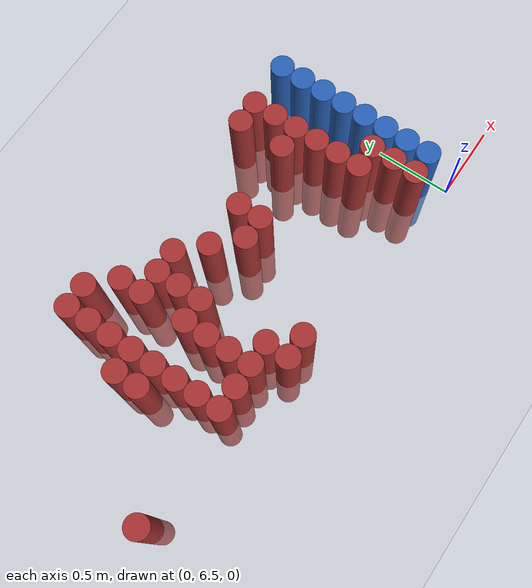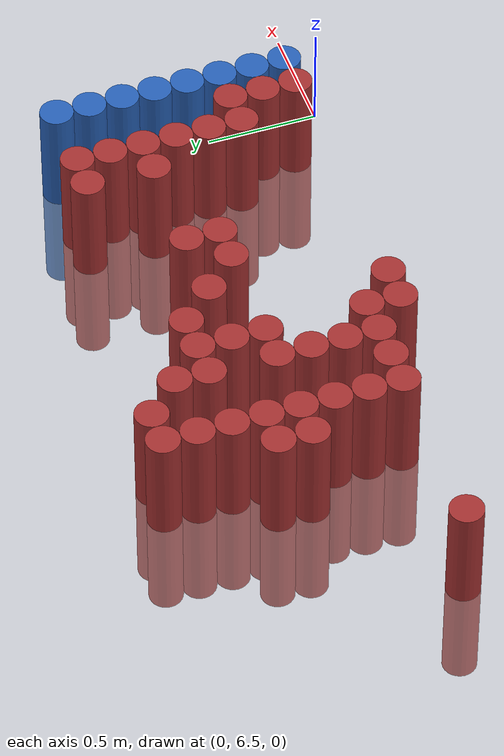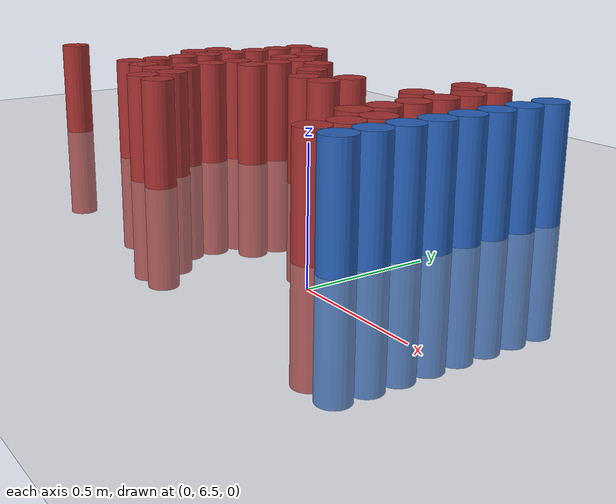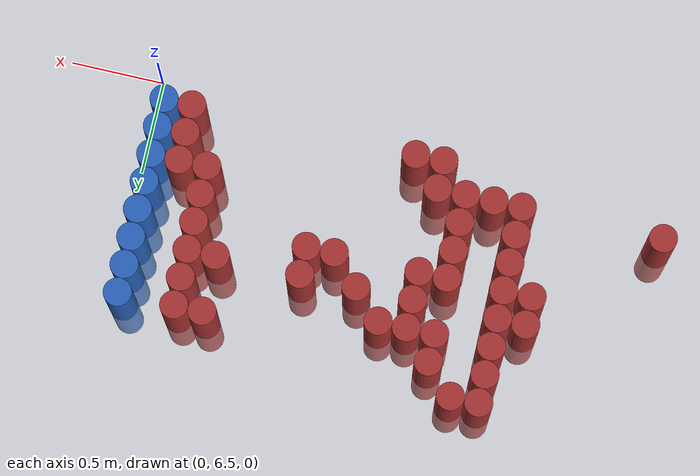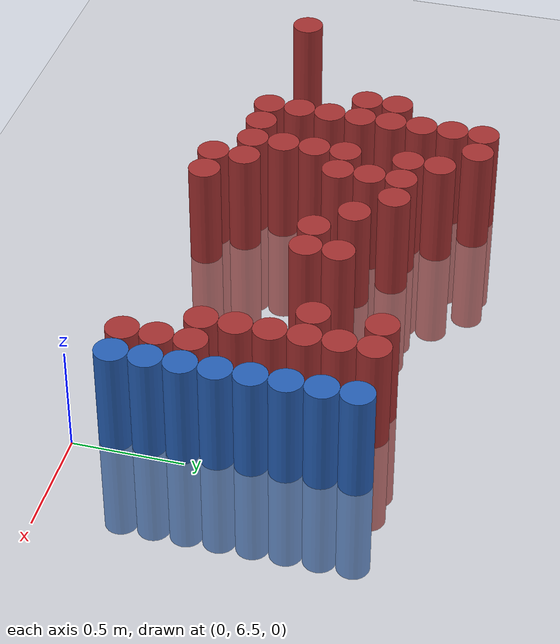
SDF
<sdf version="1.6">
 <world name="default">
  <model name="ground_plane">
   <static>1</static>
   <link name="link">
    <collision name="collision">
     <geometry><plane><normal>0 0 1</normal><size>100 100</size></plane></geometry>
     <surface><friction><ode><mu>100</mu><mu2>50</mu2></ode></friction></surface>
    </collision>
    <visual name="visual">
     <cast_shadows>0</cast_shadows>
     <geometry><plane><normal>0 0 1</normal><size>100 100</size></plane></geometry>
     <material>
      <script><uri>file://media/materials/scripts/gazebo.material</uri><name>Gazebo/Grey</name></script>
     </material>
    </visual>
   </link>
  </model>
  <model name="unit_cylinder_164">
   <static>1</static>
   <pose>-2.775000 6.825000 0.000000 0.000000 0.000000 0.000000</pose>
   <link name="link">
    <inertial>
     <mass>1</mass>
     <inertia><ixx>0.145833</ixx><ixy>0</ixy><ixz>0</ixz><iyy>0.145833</iyy><iyz>0</iyz><izz>0.125</izz></inertia>
    </inertial>
    <collision name="collision">
     <geometry><cylinder><radius>0.075000</radius><length>1</length></cylinder></geometry>
    </collision>
    <visual name="visual">
     <geometry><cylinder><radius>0.075000</radius><length>1</length></cylinder></geometry>
     <material>
      <ambient>0.648000 0.192000 0.192000 1</ambient>
      <diffuse>0.648000 0.192000 0.192000 1</diffuse>
     </material>
     <material>
      <script><name>Gazebo/Grey</name><uri>file://media/materials/scripts/gazebo.material</uri></script>
     </material>
    </visual>
   </link>
  </model>
  <model name="unit_cylinder_169">
   <static>1</static>
   <pose>-2.175000 7.275000 0.000000 0.000000 0.000000 0.000000</pose>
   <link name="link">
    <inertial>
     <mass>1</mass>
     <inertia><ixx>0.145833</ixx><ixy>0</ixy><ixz>0</ixz><iyy>0.145833</iyy><iyz>0</iyz><izz>0.125</izz></inertia>
    </inertial>
    <collision name="collision">
     <geometry><cylinder><radius>0.075000</radius><length>1</length></cylinder></geometry>
    </collision>
    <visual name="visual">
     <geometry><cylinder><radius>0.075000</radius><length>1</length></cylinder></geometry>
     <material>
      <ambient>0.648000 0.192000 0.192000 1</ambient>
      <diffuse>0.648000 0.192000 0.192000 1</diffuse>
     </material>
     <material>
      <script><name>Gazebo/Grey</name><uri>file://media/materials/scripts/gazebo.material</uri></script>
     </material>
    </visual>
   </link>
  </model>
  <model name="unit_cylinder_170">
   <static>1</static>
   <pose>-2.175000 7.425000 0.000000 0.000000 0.000000 0.000000</pose>
   <link name="link">
    <inertial>
     <mass>1</mass>
     <inertia><ixx>0.145833</ixx><ixy>0</ixy><ixz>0</ixz><iyy>0.145833</iyy><iyz>0</iyz><izz>0.125</izz></inertia>
    </inertial>
    <collision name="collision">
     <geometry><cylinder><radius>0.075000</radius><length>1</length></cylinder></geometry>
    </collision>
    <visual name="visual">
     <geometry><cylinder><radius>0.075000</radius><length>1</length></cylinder></geometry>
     <material>
      <ambient>0.648000 0.192000 0.192000 1</ambient>
      <diffuse>0.648000 0.192000 0.192000 1</diffuse>
     </material>
     <material>
      <script><name>Gazebo/Grey</name><uri>file://media/materials/scripts/gazebo.material</uri></script>
     </material>
    </visual>
   </link>
  </model>
  <model name="unit_cylinder_171">
   <static>1</static>
   <pose>-2.025000 6.825000 0.000000 0.000000 0.000000 0.000000</pose>
   <link name="link">
    <inertial>
     <mass>1</mass>
     <inertia><ixx>0.145833</ixx><ixy>0</ixy><ixz>0</ixz><iyy>0.145833</iyy><iyz>0</iyz><izz>0.125</izz></inertia>
    </inertial>
    <collision name="collision">
     <geometry><cylinder><radius>0.075000</radius><length>1</length></cylinder></geometry>
    </collision>
    <visual name="visual">
     <geometry><cylinder><radius>0.075000</radius><length>1</length></cylinder></geometry>
     <material>
      <ambient>0.648000 0.192000 0.192000 1</ambient>
      <diffuse>0.648000 0.192000 0.192000 1</diffuse>
     </material>
     <material>
      <script><name>Gazebo/Grey</name><uri>file://media/materials/scripts/gazebo.material</uri></script>
     </material>
    </visual>
   </link>
  </model>
  <model name="unit_cylinder_172">
   <static>1</static>
   <pose>-2.025000 6.975000 0.000000 0.000000 0.000000 0.000000</pose>
   <link name="link">
    <inertial>
     <mass>1</mass>
     <inertia><ixx>0.145833</ixx><ixy>0</ixy><ixz>0</ixz><iyy>0.145833</iyy><iyz>0</iyz><izz>0.125</izz></inertia>
    </inertial>
    <collision name="collision">
     <geometry><cylinder><radius>0.075000</radius><length>1</length></cylinder></geometry>
    </collision>
    <visual name="visual">
     <geometry><cylinder><radius>0.075000</radius><length>1</length></cylinder></geometry>
     <material>
      <ambient>0.648000 0.192000 0.192000 1</ambient>
      <diffuse>0.648000 0.192000 0.192000 1</diffuse>
     </material>
     <material>
      <script><name>Gazebo/Grey</name><uri>file://media/materials/scripts/gazebo.material</uri></script>
     </material>
    </visual>
   </link>
  </model>
  <model name="unit_cylinder_173">
   <static>1</static>
   <pose>-2.025000 7.125000 0.000000 0.000000 0.000000 0.000000</pose>
   <link name="link">
    <inertial>
     <mass>1</mass>
     <inertia><ixx>0.145833</ixx><ixy>0</ixy><ixz>0</ixz><iyy>0.145833</iyy><iyz>0</iyz><izz>0.125</izz></inertia>
    </inertial>
    <collision name="collision">
     <geometry><cylinder><radius>0.075000</radius><length>1</length></cylinder></geometry>
    </collision>
    <visual name="visual">
     <geometry><cylinder><radius>0.075000</radius><length>1</length></cylinder></geometry>
     <material>
      <ambient>0.648000 0.192000 0.192000 1</ambient>
      <diffuse>0.648000 0.192000 0.192000 1</diffuse>
     </material>
     <material>
      <script><name>Gazebo/Grey</name><uri>file://media/materials/scripts/gazebo.material</uri></script>
     </material>
    </visual>
   </link>
  </model>
  <model name="unit_cylinder_174">
   <static>1</static>
   <pose>-2.025000 7.275000 0.000000 0.000000 0.000000 0.000000</pose>
   <link name="link">
    <inertial>
     <mass>1</mass>
     <inertia><ixx>0.145833</ixx><ixy>0</ixy><ixz>0</ixz><iyy>0.145833</iyy><iyz>0</iyz><izz>0.125</izz></inertia>
    </inertial>
    <collision name="collision">
     <geometry><cylinder><radius>0.075000</radius><length>1</length></cylinder></geometry>
    </collision>
    <visual name="visual">
     <geometry><cylinder><radius>0.075000</radius><length>1</length></cylinder></geometry>
     <material>
      <ambient>0.648000 0.192000 0.192000 1</ambient>
      <diffuse>0.648000 0.192000 0.192000 1</diffuse>
     </material>
     <material>
      <script><name>Gazebo/Grey</name><uri>file://media/materials/scripts/gazebo.material</uri></script>
     </material>
    </visual>
   </link>
  </model>
  <model name="unit_cylinder_175">
   <static>1</static>
   <pose>-2.025000 7.425000 0.000000 0.000000 0.000000 0.000000</pose>
   <link name="link">
    <inertial>
     <mass>1</mass>
     <inertia><ixx>0.145833</ixx><ixy>0</ixy><ixz>0</ixz><iyy>0.145833</iyy><iyz>0</iyz><izz>0.125</izz></inertia>
    </inertial>
    <collision name="collision">
     <geometry><cylinder><radius>0.075000</radius><length>1</length></cylinder></geometry>
    </collision>
    <visual name="visual">
     <geometry><cylinder><radius>0.075000</radius><length>1</length></cylinder></geometry>
     <material>
      <ambient>0.648000 0.192000 0.192000 1</ambient>
      <diffuse>0.648000 0.192000 0.192000 1</diffuse>
     </material>
     <material>
      <script><name>Gazebo/Grey</name><uri>file://media/materials/scripts/gazebo.material</uri></script>
     </material>
    </visual>
   </link>
  </model>
  <model name="unit_cylinder_176">
   <static>1</static>
   <pose>-2.025000 7.575000 0.000000 0.000000 0.000000 0.000000</pose>
   <link name="link">
    <inertial>
     <mass>1</mass>
     <inertia><ixx>0.145833</ixx><ixy>0</ixy><ixz>0</ixz><iyy>0.145833</iyy><iyz>0</iyz><izz>0.125</izz></inertia>
    </inertial>
    <collision name="collision">
     <geometry><cylinder><radius>0.075000</radius><length>1</length></cylinder></geometry>
    </collision>
    <visual name="visual">
     <geometry><cylinder><radius>0.075000</radius><length>1</length></cylinder></geometry>
     <material>
      <ambient>0.648000 0.192000 0.192000 1</ambient>
      <diffuse>0.648000 0.192000 0.192000 1</diffuse>
     </material>
     <material>
      <script><name>Gazebo/Grey</name><uri>file://media/materials/scripts/gazebo.material</uri></script>
     </material>
    </visual>
   </link>
  </model>
  <model name="unit_cylinder_177">
   <static>1</static>
   <pose>-2.025000 7.725000 0.000000 0.000000 0.000000 0.000000</pose>
   <link name="link">
    <inertial>
     <mass>1</mass>
     <inertia><ixx>0.145833</ixx><ixy>0</ixy><ixz>0</ixz><iyy>0.145833</iyy><iyz>0</iyz><izz>0.125</izz></inertia>
    </inertial>
    <collision name="collision">
     <geometry><cylinder><radius>0.075000</radius><length>1</length></cylinder></geometry>
    </collision>
    <visual name="visual">
     <geometry><cylinder><radius>0.075000</radius><length>1</length></cylinder></geometry>
     <material>
      <ambient>0.648000 0.192000 0.192000 1</ambient>
      <diffuse>0.648000 0.192000 0.192000 1</diffuse>
     </material>
     <material>
      <script><name>Gazebo/Grey</name><uri>file://media/materials/scripts/gazebo.material</uri></script>
     </material>
    </visual>
   </link>
  </model>
  <model name="unit_cylinder_178">
   <static>1</static>
   <pose>-2.025000 7.875000 0.000000 0.000000 0.000000 0.000000</pose>
   <link name="link">
    <inertial>
     <mass>1</mass>
     <inertia><ixx>0.145833</ixx><ixy>0</ixy><ixz>0</ixz><iyy>0.145833</iyy><iyz>0</iyz><izz>0.125</izz></inertia>
    </inertial>
    <collision name="collision">
     <geometry><cylinder><radius>0.075000</radius><length>1</length></cylinder></geometry>
    </collision>
    <visual name="visual">
     <geometry><cylinder><radius>0.075000</radius><length>1</length></cylinder></geometry>
     <material>
      <ambient>0.648000 0.192000 0.192000 1</ambient>
      <diffuse>0.648000 0.192000 0.192000 1</diffuse>
     </material>
     <material>
      <script><name>Gazebo/Grey</name><uri>file://media/materials/scripts/gazebo.material</uri></script>
     </material>
    </visual>
   </link>
  </model>
  <model name="unit_cylinder_182">
   <static>1</static>
   <pose>-1.875000 6.825000 0.000000 0.000000 0.000000 0.000000</pose>
   <link name="link">
    <inertial>
     <mass>1</mass>
     <inertia><ixx>0.145833</ixx><ixy>0</ixy><ixz>0</ixz><iyy>0.145833</iyy><iyz>0</iyz><izz>0.125</izz></inertia>
    </inertial>
    <collision name="collision">
     <geometry><cylinder><radius>0.075000</radius><length>1</length></cylinder></geometry>
    </collision>
    <visual name="visual">
     <geometry><cylinder><radius>0.075000</radius><length>1</length></cylinder></geometry>
     <material>
      <ambient>0.648000 0.192000 0.192000 1</ambient>
      <diffuse>0.648000 0.192000 0.192000 1</diffuse>
     </material>
     <material>
      <script><name>Gazebo/Grey</name><uri>file://media/materials/scripts/gazebo.material</uri></script>
     </material>
    </visual>
   </link>
  </model>
  <model name="unit_cylinder_183">
   <static>1</static>
   <pose>-1.875000 7.875000 0.000000 0.000000 0.000000 0.000000</pose>
   <link name="link">
    <inertial>
     <mass>1</mass>
     <inertia><ixx>0.145833</ixx><ixy>0</ixy><ixz>0</ixz><iyy>0.145833</iyy><iyz>0</iyz><izz>0.125</izz></inertia>
    </inertial>
    <collision name="collision">
     <geometry><cylinder><radius>0.075000</radius><length>1</length></cylinder></geometry>
    </collision>
    <visual name="visual">
     <geometry><cylinder><radius>0.075000</radius><length>1</length></cylinder></geometry>
     <material>
      <ambient>0.648000 0.192000 0.192000 1</ambient>
      <diffuse>0.648000 0.192000 0.192000 1</diffuse>
     </material>
     <material>
      <script><name>Gazebo/Grey</name><uri>file://media/materials/scripts/gazebo.material</uri></script>
     </material>
    </visual>
   </link>
  </model>
  <model name="unit_cylinder_190">
   <static>1</static>
   <pose>-1.725000 6.825000 0.000000 0.000000 0.000000 0.000000</pose>
   <link name="link">
    <inertial>
     <mass>1</mass>
     <inertia><ixx>0.145833</ixx><ixy>0</ixy><ixz>0</ixz><iyy>0.145833</iyy><iyz>0</iyz><izz>0.125</izz></inertia>
    </inertial>
    <collision name="collision">
     <geometry><cylinder><radius>0.075000</radius><length>1</length></cylinder></geometry>
    </collision>
    <visual name="visual">
     <geometry><cylinder><radius>0.075000</radius><length>1</length></cylinder></geometry>
     <material>
      <ambient>0.648000 0.192000 0.192000 1</ambient>
      <diffuse>0.648000 0.192000 0.192000 1</diffuse>
     </material>
     <material>
      <script><name>Gazebo/Grey</name><uri>file://media/materials/scripts/gazebo.material</uri></script>
     </material>
    </visual>
   </link>
  </model>
  <model name="unit_cylinder_191">
   <static>1</static>
   <pose>-1.725000 6.975000 0.000000 0.000000 0.000000 0.000000</pose>
   <link name="link">
    <inertial>
     <mass>1</mass>
     <inertia><ixx>0.145833</ixx><ixy>0</ixy><ixz>0</ixz><iyy>0.145833</iyy><iyz>0</iyz><izz>0.125</izz></inertia>
    </inertial>
    <collision name="collision">
     <geometry><cylinder><radius>0.075000</radius><length>1</length></cylinder></geometry>
    </collision>
    <visual name="visual">
     <geometry><cylinder><radius>0.075000</radius><length>1</length></cylinder></geometry>
     <material>
      <ambient>0.648000 0.192000 0.192000 1</ambient>
      <diffuse>0.648000 0.192000 0.192000 1</diffuse>
     </material>
     <material>
      <script><name>Gazebo/Grey</name><uri>file://media/materials/scripts/gazebo.material</uri></script>
     </material>
    </visual>
   </link>
  </model>
  <model name="unit_cylinder_192">
   <static>1</static>
   <pose>-1.725000 7.125000 0.000000 0.000000 0.000000 0.000000</pose>
   <link name="link">
    <inertial>
     <mass>1</mass>
     <inertia><ixx>0.145833</ixx><ixy>0</ixy><ixz>0</ixz><iyy>0.145833</iyy><iyz>0</iyz><izz>0.125</izz></inertia>
    </inertial>
    <collision name="collision">
     <geometry><cylinder><radius>0.075000</radius><length>1</length></cylinder></geometry>
    </collision>
    <visual name="visual">
     <geometry><cylinder><radius>0.075000</radius><length>1</length></cylinder></geometry>
     <material>
      <ambient>0.648000 0.192000 0.192000 1</ambient>
      <diffuse>0.648000 0.192000 0.192000 1</diffuse>
     </material>
     <material>
      <script><name>Gazebo/Grey</name><uri>file://media/materials/scripts/gazebo.material</uri></script>
     </material>
    </visual>
   </link>
  </model>
  <model name="unit_cylinder_193">
   <static>1</static>
   <pose>-1.725000 7.275000 0.000000 0.000000 0.000000 0.000000</pose>
   <link name="link">
    <inertial>
     <mass>1</mass>
     <inertia><ixx>0.145833</ixx><ixy>0</ixy><ixz>0</ixz><iyy>0.145833</iyy><iyz>0</iyz><izz>0.125</izz></inertia>
    </inertial>
    <collision name="collision">
     <geometry><cylinder><radius>0.075000</radius><length>1</length></cylinder></geometry>
    </collision>
    <visual name="visual">
     <geometry><cylinder><radius>0.075000</radius><length>1</length></cylinder></geometry>
     <material>
      <ambient>0.648000 0.192000 0.192000 1</ambient>
      <diffuse>0.648000 0.192000 0.192000 1</diffuse>
     </material>
     <material>
      <script><name>Gazebo/Grey</name><uri>file://media/materials/scripts/gazebo.material</uri></script>
     </material>
    </visual>
   </link>
  </model>
  <model name="unit_cylinder_194">
   <static>1</static>
   <pose>-1.725000 7.575000 0.000000 0.000000 0.000000 0.000000</pose>
   <link name="link">
    <inertial>
     <mass>1</mass>
     <inertia><ixx>0.145833</ixx><ixy>0</ixy><ixz>0</ixz><iyy>0.145833</iyy><iyz>0</iyz><izz>0.125</izz></inertia>
    </inertial>
    <collision name="collision">
     <geometry><cylinder><radius>0.075000</radius><length>1</length></cylinder></geometry>
    </collision>
    <visual name="visual">
     <geometry><cylinder><radius>0.075000</radius><length>1</length></cylinder></geometry>
     <material>
      <ambient>0.648000 0.192000 0.192000 1</ambient>
      <diffuse>0.648000 0.192000 0.192000 1</diffuse>
     </material>
     <material>
      <script><name>Gazebo/Grey</name><uri>file://media/materials/scripts/gazebo.material</uri></script>
     </material>
    </visual>
   </link>
  </model>
  <model name="unit_cylinder_195">
   <static>1</static>
   <pose>-1.725000 7.725000 0.000000 0.000000 0.000000 0.000000</pose>
   <link name="link">
    <inertial>
     <mass>1</mass>
     <inertia><ixx>0.145833</ixx><ixy>0</ixy><ixz>0</ixz><iyy>0.145833</iyy><iyz>0</iyz><izz>0.125</izz></inertia>
    </inertial>
    <collision name="collision">
     <geometry><cylinder><radius>0.075000</radius><length>1</length></cylinder></geometry>
    </collision>
    <visual name="visual">
     <geometry><cylinder><radius>0.075000</radius><length>1</length></cylinder></geometry>
     <material>
      <ambient>0.648000 0.192000 0.192000 1</ambient>
      <diffuse>0.648000 0.192000 0.192000 1</diffuse>
     </material>
     <material>
      <script><name>Gazebo/Grey</name><uri>file://media/materials/scripts/gazebo.material</uri></script>
     </material>
    </visual>
   </link>
  </model>
  <model name="unit_cylinder_199">
   <static>1</static>
   <pose>-1.575000 6.675000 0.000000 0.000000 0.000000 0.000000</pose>
   <link name="link">
    <inertial>
     <mass>1</mass>
     <inertia><ixx>0.145833</ixx><ixy>0</ixy><ixz>0</ixz><iyy>0.145833</iyy><iyz>0</iyz><izz>0.125</izz></inertia>
    </inertial>
    <collision name="collision">
     <geometry><cylinder><radius>0.075000</radius><length>1</length></cylinder></geometry>
    </collision>
    <visual name="visual">
     <geometry><cylinder><radius>0.075000</radius><length>1</length></cylinder></geometry>
     <material>
      <ambient>0.648000 0.192000 0.192000 1</ambient>
      <diffuse>0.648000 0.192000 0.192000 1</diffuse>
     </material>
     <material>
      <script><name>Gazebo/Grey</name><uri>file://media/materials/scripts/gazebo.material</uri></script>
     </material>
    </visual>
   </link>
  </model>
  <model name="unit_cylinder_200">
   <static>1</static>
   <pose>-1.575000 6.825000 0.000000 0.000000 0.000000 0.000000</pose>
   <link name="link">
    <inertial>
     <mass>1</mass>
     <inertia><ixx>0.145833</ixx><ixy>0</ixy><ixz>0</ixz><iyy>0.145833</iyy><iyz>0</iyz><izz>0.125</izz></inertia>
    </inertial>
    <collision name="collision">
     <geometry><cylinder><radius>0.075000</radius><length>1</length></cylinder></geometry>
    </collision>
    <visual name="visual">
     <geometry><cylinder><radius>0.075000</radius><length>1</length></cylinder></geometry>
     <material>
      <ambient>0.648000 0.192000 0.192000 1</ambient>
      <diffuse>0.648000 0.192000 0.192000 1</diffuse>
     </material>
     <material>
      <script><name>Gazebo/Grey</name><uri>file://media/materials/scripts/gazebo.material</uri></script>
     </material>
    </visual>
   </link>
  </model>
  <model name="unit_cylinder_201">
   <static>1</static>
   <pose>-1.575000 7.275000 0.000000 0.000000 0.000000 0.000000</pose>
   <link name="link">
    <inertial>
     <mass>1</mass>
     <inertia><ixx>0.145833</ixx><ixy>0</ixy><ixz>0</ixz><iyy>0.145833</iyy><iyz>0</iyz><izz>0.125</izz></inertia>
    </inertial>
    <collision name="collision">
     <geometry><cylinder><radius>0.075000</radius><length>1</length></cylinder></geometry>
    </collision>
    <visual name="visual">
     <geometry><cylinder><radius>0.075000</radius><length>1</length></cylinder></geometry>
     <material>
      <ambient>0.648000 0.192000 0.192000 1</ambient>
      <diffuse>0.648000 0.192000 0.192000 1</diffuse>
     </material>
     <material>
      <script><name>Gazebo/Grey</name><uri>file://media/materials/scripts/gazebo.material</uri></script>
     </material>
    </visual>
   </link>
  </model>
  <model name="unit_cylinder_202">
   <static>1</static>
   <pose>-1.575000 7.425000 0.000000 0.000000 0.000000 0.000000</pose>
   <link name="link">
    <inertial>
     <mass>1</mass>
     <inertia><ixx>0.145833</ixx><ixy>0</ixy><ixz>0</ixz><iyy>0.145833</iyy><iyz>0</iyz><izz>0.125</izz></inertia>
    </inertial>
    <collision name="collision">
     <geometry><cylinder><radius>0.075000</radius><length>1</length></cylinder></geometry>
    </collision>
    <visual name="visual">
     <geometry><cylinder><radius>0.075000</radius><length>1</length></cylinder></geometry>
     <material>
      <ambient>0.648000 0.192000 0.192000 1</ambient>
      <diffuse>0.648000 0.192000 0.192000 1</diffuse>
     </material>
     <material>
      <script><name>Gazebo/Grey</name><uri>file://media/materials/scripts/gazebo.material</uri></script>
     </material>
    </visual>
   </link>
  </model>
  <model name="unit_cylinder_203">
   <static>1</static>
   <pose>-1.575000 7.575000 0.000000 0.000000 0.000000 0.000000</pose>
   <link name="link">
    <inertial>
     <mass>1</mass>
     <inertia><ixx>0.145833</ixx><ixy>0</ixy><ixz>0</ixz><iyy>0.145833</iyy><iyz>0</iyz><izz>0.125</izz></inertia>
    </inertial>
    <collision name="collision">
     <geometry><cylinder><radius>0.075000</radius><length>1</length></cylinder></geometry>
    </collision>
    <visual name="visual">
     <geometry><cylinder><radius>0.075000</radius><length>1</length></cylinder></geometry>
     <material>
      <ambient>0.648000 0.192000 0.192000 1</ambient>
      <diffuse>0.648000 0.192000 0.192000 1</diffuse>
     </material>
     <material>
      <script><name>Gazebo/Grey</name><uri>file://media/materials/scripts/gazebo.material</uri></script>
     </material>
    </visual>
   </link>
  </model>
  <model name="unit_cylinder_206">
   <static>1</static>
   <pose>-1.425000 6.675000 0.000000 0.000000 0.000000 0.000000</pose>
   <link name="link">
    <inertial>
     <mass>1</mass>
     <inertia><ixx>0.145833</ixx><ixy>0</ixy><ixz>0</ixz><iyy>0.145833</iyy><iyz>0</iyz><izz>0.125</izz></inertia>
    </inertial>
    <collision name="collision">
     <geometry><cylinder><radius>0.075000</radius><length>1</length></cylinder></geometry>
    </collision>
    <visual name="visual">
     <geometry><cylinder><radius>0.075000</radius><length>1</length></cylinder></geometry>
     <material>
      <ambient>0.648000 0.192000 0.192000 1</ambient>
      <diffuse>0.648000 0.192000 0.192000 1</diffuse>
     </material>
     <material>
      <script><name>Gazebo/Grey</name><uri>file://media/materials/scripts/gazebo.material</uri></script>
     </material>
    </visual>
   </link>
  </model>
  <model name="unit_cylinder_207">
   <static>1</static>
   <pose>-1.425000 7.575000 0.000000 0.000000 0.000000 0.000000</pose>
   <link name="link">
    <inertial>
     <mass>1</mass>
     <inertia><ixx>0.145833</ixx><ixy>0</ixy><ixz>0</ixz><iyy>0.145833</iyy><iyz>0</iyz><izz>0.125</izz></inertia>
    </inertial>
    <collision name="collision">
     <geometry><cylinder><radius>0.075000</radius><length>1</length></cylinder></geometry>
    </collision>
    <visual name="visual">
     <geometry><cylinder><radius>0.075000</radius><length>1</length></cylinder></geometry>
     <material>
      <ambient>0.648000 0.192000 0.192000 1</ambient>
      <diffuse>0.648000 0.192000 0.192000 1</diffuse>
     </material>
     <material>
      <script><name>Gazebo/Grey</name><uri>file://media/materials/scripts/gazebo.material</uri></script>
     </material>
    </visual>
   </link>
  </model>
  <model name="unit_cylinder_210">
   <static>1</static>
   <pose>-1.275000 7.425000 0.000000 0.000000 0.000000 0.000000</pose>
   <link name="link">
    <inertial>
     <mass>1</mass>
     <inertia><ixx>0.145833</ixx><ixy>0</ixy><ixz>0</ixz><iyy>0.145833</iyy><iyz>0</iyz><izz>0.125</izz></inertia>
    </inertial>
    <collision name="collision">
     <geometry><cylinder><radius>0.075000</radius><length>1</length></cylinder></geometry>
    </collision>
    <visual name="visual">
     <geometry><cylinder><radius>0.075000</radius><length>1</length></cylinder></geometry>
     <material>
      <ambient>0.648000 0.192000 0.192000 1</ambient>
      <diffuse>0.648000 0.192000 0.192000 1</diffuse>
     </material>
     <material>
      <script><name>Gazebo/Grey</name><uri>file://media/materials/scripts/gazebo.material</uri></script>
     </material>
    </visual>
   </link>
  </model>
  <model name="unit_cylinder_213">
   <static>1</static>
   <pose>-1.125000 7.275000 0.000000 0.000000 0.000000 0.000000</pose>
   <link name="link">
    <inertial>
     <mass>1</mass>
     <inertia><ixx>0.145833</ixx><ixy>0</ixy><ixz>0</ixz><iyy>0.145833</iyy><iyz>0</iyz><izz>0.125</izz></inertia>
    </inertial>
    <collision name="collision">
     <geometry><cylinder><radius>0.075000</radius><length>1</length></cylinder></geometry>
    </collision>
    <visual name="visual">
     <geometry><cylinder><radius>0.075000</radius><length>1</length></cylinder></geometry>
     <material>
      <ambient>0.648000 0.192000 0.192000 1</ambient>
      <diffuse>0.648000 0.192000 0.192000 1</diffuse>
     </material>
     <material>
      <script><name>Gazebo/Grey</name><uri>file://media/materials/scripts/gazebo.material</uri></script>
     </material>
    </visual>
   </link>
  </model>
  <model name="unit_cylinder_215">
   <static>1</static>
   <pose>-0.975000 7.275000 0.000000 0.000000 0.000000 0.000000</pose>
   <link name="link">
    <inertial>
     <mass>1</mass>
     <inertia><ixx>0.145833</ixx><ixy>0</ixy><ixz>0</ixz><iyy>0.145833</iyy><iyz>0</iyz><izz>0.125</izz></inertia>
    </inertial>
    <collision name="collision">
     <geometry><cylinder><radius>0.075000</radius><length>1</length></cylinder></geometry>
    </collision>
    <visual name="visual">
     <geometry><cylinder><radius>0.075000</radius><length>1</length></cylinder></geometry>
     <material>
      <ambient>0.648000 0.192000 0.192000 1</ambient>
      <diffuse>0.648000 0.192000 0.192000 1</diffuse>
     </material>
     <material>
      <script><name>Gazebo/Grey</name><uri>file://media/materials/scripts/gazebo.material</uri></script>
     </material>
    </visual>
   </link>
  </model>
  <model name="unit_cylinder_216">
   <static>1</static>
   <pose>-0.975000 7.425000 0.000000 0.000000 0.000000 0.000000</pose>
   <link name="link">
    <inertial>
     <mass>1</mass>
     <inertia><ixx>0.145833</ixx><ixy>0</ixy><ixz>0</ixz><iyy>0.145833</iyy><iyz>0</iyz><izz>0.125</izz></inertia>
    </inertial>
    <collision name="collision">
     <geometry><cylinder><radius>0.075000</radius><length>1</length></cylinder></geometry>
    </collision>
    <visual name="visual">
     <geometry><cylinder><radius>0.075000</radius><length>1</length></cylinder></geometry>
     <material>
      <ambient>0.648000 0.192000 0.192000 1</ambient>
      <diffuse>0.648000 0.192000 0.192000 1</diffuse>
     </material>
     <material>
      <script><name>Gazebo/Grey</name><uri>file://media/materials/scripts/gazebo.material</uri></script>
     </material>
    </visual>
   </link>
  </model>
  <model name="unit_cylinder_226">
   <static>1</static>
   <pose>-0.525000 7.425000 0.000000 0.000000 0.000000 0.000000</pose>
   <link name="link">
    <inertial>
     <mass>1</mass>
     <inertia><ixx>0.145833</ixx><ixy>0</ixy><ixz>0</ixz><iyy>0.145833</iyy><iyz>0</iyz><izz>0.125</izz></inertia>
    </inertial>
    <collision name="collision">
     <geometry><cylinder><radius>0.075000</radius><length>1</length></cylinder></geometry>
    </collision>
    <visual name="visual">
     <geometry><cylinder><radius>0.075000</radius><length>1</length></cylinder></geometry>
     <material>
      <ambient>0.648000 0.192000 0.192000 1</ambient>
      <diffuse>0.648000 0.192000 0.192000 1</diffuse>
     </material>
     <material>
      <script><name>Gazebo/Grey</name><uri>file://media/materials/scripts/gazebo.material</uri></script>
     </material>
    </visual>
   </link>
  </model>
  <model name="unit_cylinder_227">
   <static>1</static>
   <pose>-0.525000 7.725000 0.000000 0.000000 0.000000 0.000000</pose>
   <link name="link">
    <inertial>
     <mass>1</mass>
     <inertia><ixx>0.145833</ixx><ixy>0</ixy><ixz>0</ixz><iyy>0.145833</iyy><iyz>0</iyz><izz>0.125</izz></inertia>
    </inertial>
    <collision name="collision">
     <geometry><cylinder><radius>0.075000</radius><length>1</length></cylinder></geometry>
    </collision>
    <visual name="visual">
     <geometry><cylinder><radius>0.075000</radius><length>1</length></cylinder></geometry>
     <material>
      <ambient>0.648000 0.192000 0.192000 1</ambient>
      <diffuse>0.648000 0.192000 0.192000 1</diffuse>
     </material>
     <material>
      <script><name>Gazebo/Grey</name><uri>file://media/materials/scripts/gazebo.material</uri></script>
     </material>
    </visual>
   </link>
  </model>
  <model name="unit_cylinder_236">
   <static>1</static>
   <pose>-0.375000 6.975000 0.000000 0.000000 0.000000 0.000000</pose>
   <link name="link">
    <inertial>
     <mass>1</mass>
     <inertia><ixx>0.145833</ixx><ixy>0</ixy><ixz>0</ixz><iyy>0.145833</iyy><iyz>0</iyz><izz>0.125</izz></inertia>
    </inertial>
    <collision name="collision">
     <geometry><cylinder><radius>0.075000</radius><length>1</length></cylinder></geometry>
    </collision>
    <visual name="visual">
     <geometry><cylinder><radius>0.075000</radius><length>1</length></cylinder></geometry>
     <material>
      <ambient>0.648000 0.192000 0.192000 1</ambient>
      <diffuse>0.648000 0.192000 0.192000 1</diffuse>
     </material>
     <material>
      <script><name>Gazebo/Grey</name><uri>file://media/materials/scripts/gazebo.material</uri></script>
     </material>
    </visual>
   </link>
  </model>
  <model name="unit_cylinder_237">
   <static>1</static>
   <pose>-0.375000 7.125000 0.000000 0.000000 0.000000 0.000000</pose>
   <link name="link">
    <inertial>
     <mass>1</mass>
     <inertia><ixx>0.145833</ixx><ixy>0</ixy><ixz>0</ixz><iyy>0.145833</iyy><iyz>0</iyz><izz>0.125</izz></inertia>
    </inertial>
    <collision name="collision">
     <geometry><cylinder><radius>0.075000</radius><length>1</length></cylinder></geometry>
    </collision>
    <visual name="visual">
     <geometry><cylinder><radius>0.075000</radius><length>1</length></cylinder></geometry>
     <material>
      <ambient>0.648000 0.192000 0.192000 1</ambient>
      <diffuse>0.648000 0.192000 0.192000 1</diffuse>
     </material>
     <material>
      <script><name>Gazebo/Grey</name><uri>file://media/materials/scripts/gazebo.material</uri></script>
     </material>
    </visual>
   </link>
  </model>
  <model name="unit_cylinder_238">
   <static>1</static>
   <pose>-0.375000 7.275000 0.000000 0.000000 0.000000 0.000000</pose>
   <link name="link">
    <inertial>
     <mass>1</mass>
     <inertia><ixx>0.145833</ixx><ixy>0</ixy><ixz>0</ixz><iyy>0.145833</iyy><iyz>0</iyz><izz>0.125</izz></inertia>
    </inertial>
    <collision name="collision">
     <geometry><cylinder><radius>0.075000</radius><length>1</length></cylinder></geometry>
    </collision>
    <visual name="visual">
     <geometry><cylinder><radius>0.075000</radius><length>1</length></cylinder></geometry>
     <material>
      <ambient>0.648000 0.192000 0.192000 1</ambient>
      <diffuse>0.648000 0.192000 0.192000 1</diffuse>
     </material>
     <material>
      <script><name>Gazebo/Grey</name><uri>file://media/materials/scripts/gazebo.material</uri></script>
     </material>
    </visual>
   </link>
  </model>
  <model name="unit_cylinder_239">
   <static>1</static>
   <pose>-0.375000 7.425000 0.000000 0.000000 0.000000 0.000000</pose>
   <link name="link">
    <inertial>
     <mass>1</mass>
     <inertia><ixx>0.145833</ixx><ixy>0</ixy><ixz>0</ixz><iyy>0.145833</iyy><iyz>0</iyz><izz>0.125</izz></inertia>
    </inertial>
    <collision name="collision">
     <geometry><cylinder><radius>0.075000</radius><length>1</length></cylinder></geometry>
    </collision>
    <visual name="visual">
     <geometry><cylinder><radius>0.075000</radius><length>1</length></cylinder></geometry>
     <material>
      <ambient>0.648000 0.192000 0.192000 1</ambient>
      <diffuse>0.648000 0.192000 0.192000 1</diffuse>
     </material>
     <material>
      <script><name>Gazebo/Grey</name><uri>file://media/materials/scripts/gazebo.material</uri></script>
     </material>
    </visual>
   </link>
  </model>
  <model name="unit_cylinder_240">
   <static>1</static>
   <pose>-0.375000 7.575000 0.000000 0.000000 0.000000 0.000000</pose>
   <link name="link">
    <inertial>
     <mass>1</mass>
     <inertia><ixx>0.145833</ixx><ixy>0</ixy><ixz>0</ixz><iyy>0.145833</iyy><iyz>0</iyz><izz>0.125</izz></inertia>
    </inertial>
    <collision name="collision">
     <geometry><cylinder><radius>0.075000</radius><length>1</length></cylinder></geometry>
    </collision>
    <visual name="visual">
     <geometry><cylinder><radius>0.075000</radius><length>1</length></cylinder></geometry>
     <material>
      <ambient>0.648000 0.192000 0.192000 1</ambient>
      <diffuse>0.648000 0.192000 0.192000 1</diffuse>
     </material>
     <material>
      <script><name>Gazebo/Grey</name><uri>file://media/materials/scripts/gazebo.material</uri></script>
     </material>
    </visual>
   </link>
  </model>
  <model name="unit_cylinder_241">
   <static>1</static>
   <pose>-0.375000 7.725000 0.000000 0.000000 0.000000 0.000000</pose>
   <link name="link">
    <inertial>
     <mass>1</mass>
     <inertia><ixx>0.145833</ixx><ixy>0</ixy><ixz>0</ixz><iyy>0.145833</iyy><iyz>0</iyz><izz>0.125</izz></inertia>
    </inertial>
    <collision name="collision">
     <geometry><cylinder><radius>0.075000</radius><length>1</length></cylinder></geometry>
    </collision>
    <visual name="visual">
     <geometry><cylinder><radius>0.075000</radius><length>1</length></cylinder></geometry>
     <material>
      <ambient>0.648000 0.192000 0.192000 1</ambient>
      <diffuse>0.648000 0.192000 0.192000 1</diffuse>
     </material>
     <material>
      <script><name>Gazebo/Grey</name><uri>file://media/materials/scripts/gazebo.material</uri></script>
     </material>
    </visual>
   </link>
  </model>
  <model name="unit_cylinder_254">
   <static>1</static>
   <pose>-0.225000 6.675000 0.000000 0.000000 0.000000 0.000000</pose>
   <link name="link">
    <inertial>
     <mass>1</mass>
     <inertia><ixx>0.145833</ixx><ixy>0</ixy><ixz>0</ixz><iyy>0.145833</iyy><iyz>0</iyz><izz>0.125</izz></inertia>
    </inertial>
    <collision name="collision">
     <geometry><cylinder><radius>0.075000</radius><length>1</length></cylinder></geometry>
    </collision>
    <visual name="visual">
     <geometry><cylinder><radius>0.075000</radius><length>1</length></cylinder></geometry>
     <material>
      <ambient>0.648000 0.192000 0.192000 1</ambient>
      <diffuse>0.648000 0.192000 0.192000 1</diffuse>
     </material>
     <material>
      <script><name>Gazebo/Grey</name><uri>file://media/materials/scripts/gazebo.material</uri></script>
     </material>
    </visual>
   </link>
  </model>
  <model name="unit_cylinder_255">
   <static>1</static>
   <pose>-0.225000 6.825000 0.000000 0.000000 0.000000 0.000000</pose>
   <link name="link">
    <inertial>
     <mass>1</mass>
     <inertia><ixx>0.145833</ixx><ixy>0</ixy><ixz>0</ixz><iyy>0.145833</iyy><iyz>0</iyz><izz>0.125</izz></inertia>
    </inertial>
    <collision name="collision">
     <geometry><cylinder><radius>0.075000</radius><length>1</length></cylinder></geometry>
    </collision>
    <visual name="visual">
     <geometry><cylinder><radius>0.075000</radius><length>1</length></cylinder></geometry>
     <material>
      <ambient>0.648000 0.192000 0.192000 1</ambient>
      <diffuse>0.648000 0.192000 0.192000 1</diffuse>
     </material>
     <material>
      <script><name>Gazebo/Grey</name><uri>file://media/materials/scripts/gazebo.material</uri></script>
     </material>
    </visual>
   </link>
  </model>
  <model name="unit_cylinder_256">
   <static>1</static>
   <pose>-0.225000 6.975000 0.000000 0.000000 0.000000 0.000000</pose>
   <link name="link">
    <inertial>
     <mass>1</mass>
     <inertia><ixx>0.145833</ixx><ixy>0</ixy><ixz>0</ixz><iyy>0.145833</iyy><iyz>0</iyz><izz>0.125</izz></inertia>
    </inertial>
    <collision name="collision">
     <geometry><cylinder><radius>0.075000</radius><length>1</length></cylinder></geometry>
    </collision>
    <visual name="visual">
     <geometry><cylinder><radius>0.075000</radius><length>1</length></cylinder></geometry>
     <material>
      <ambient>0.648000 0.192000 0.192000 1</ambient>
      <diffuse>0.648000 0.192000 0.192000 1</diffuse>
     </material>
     <material>
      <script><name>Gazebo/Grey</name><uri>file://media/materials/scripts/gazebo.material</uri></script>
     </material>
    </visual>
   </link>
  </model>
  <model name="unit_cylinder_275">
   <static>1</static>
   <pose>-0.075000 6.675000 0.000000 0.000000 0.000000 0.000000</pose>
   <link name="link">
    <inertial>
     <mass>1</mass>
     <inertia><ixx>0.145833</ixx><ixy>0</ixy><ixz>0</ixz><iyy>0.145833</iyy><iyz>0</iyz><izz>0.125</izz></inertia>
    </inertial>
    <collision name="collision">
     <geometry><cylinder><radius>0.075000</radius><length>1</length></cylinder></geometry>
    </collision>
    <visual name="visual">
     <geometry><cylinder><radius>0.075000</radius><length>1</length></cylinder></geometry>
     <material>
      <ambient>0.152000 0.379000 0.720000 1</ambient>
      <diffuse>0.152000 0.379000 0.720000 1</diffuse>
     </material>
     <material>
      <script><name>Gazebo/Grey</name><uri>file://media/materials/scripts/gazebo.material</uri></script>
     </material>
    </visual>
   </link>
  </model>
  <model name="unit_cylinder_276">
   <static>1</static>
   <pose>-0.075000 6.825000 0.000000 0.000000 0.000000 0.000000</pose>
   <link name="link">
    <inertial>
     <mass>1</mass>
     <inertia><ixx>0.145833</ixx><ixy>0</ixy><ixz>0</ixz><iyy>0.145833</iyy><iyz>0</iyz><izz>0.125</izz></inertia>
    </inertial>
    <collision name="collision">
     <geometry><cylinder><radius>0.075000</radius><length>1</length></cylinder></geometry>
    </collision>
    <visual name="visual">
     <geometry><cylinder><radius>0.075000</radius><length>1</length></cylinder></geometry>
     <material>
      <ambient>0.152000 0.379000 0.720000 1</ambient>
      <diffuse>0.152000 0.379000 0.720000 1</diffuse>
     </material>
     <material>
      <script><name>Gazebo/Grey</name><uri>file://media/materials/scripts/gazebo.material</uri></script>
     </material>
    </visual>
   </link>
  </model>
  <model name="unit_cylinder_277">
   <static>1</static>
   <pose>-0.075000 6.975000 0.000000 0.000000 0.000000 0.000000</pose>
   <link name="link">
    <inertial>
     <mass>1</mass>
     <inertia><ixx>0.145833</ixx><ixy>0</ixy><ixz>0</ixz><iyy>0.145833</iyy><iyz>0</iyz><izz>0.125</izz></inertia>
    </inertial>
    <collision name="collision">
     <geometry><cylinder><radius>0.075000</radius><length>1</length></cylinder></geometry>
    </collision>
    <visual name="visual">
     <geometry><cylinder><radius>0.075000</radius><length>1</length></cylinder></geometry>
     <material>
      <ambient>0.152000 0.379000 0.720000 1</ambient>
      <diffuse>0.152000 0.379000 0.720000 1</diffuse>
     </material>
     <material>
      <script><name>Gazebo/Grey</name><uri>file://media/materials/scripts/gazebo.material</uri></script>
     </material>
    </visual>
   </link>
  </model>
  <model name="unit_cylinder_278">
   <static>1</static>
   <pose>-0.075000 7.125000 0.000000 0.000000 0.000000 0.000000</pose>
   <link name="link">
    <inertial>
     <mass>1</mass>
     <inertia><ixx>0.145833</ixx><ixy>0</ixy><ixz>0</ixz><iyy>0.145833</iyy><iyz>0</iyz><izz>0.125</izz></inertia>
    </inertial>
    <collision name="collision">
     <geometry><cylinder><radius>0.075000</radius><length>1</length></cylinder></geometry>
    </collision>
    <visual name="visual">
     <geometry><cylinder><radius>0.075000</radius><length>1</length></cylinder></geometry>
     <material>
      <ambient>0.152000 0.379000 0.720000 1</ambient>
      <diffuse>0.152000 0.379000 0.720000 1</diffuse>
     </material>
     <material>
      <script><name>Gazebo/Grey</name><uri>file://media/materials/scripts/gazebo.material</uri></script>
     </material>
    </visual>
   </link>
  </model>
  <model name="unit_cylinder_279">
   <static>1</static>
   <pose>-0.075000 7.275000 0.000000 0.000000 0.000000 0.000000</pose>
   <link name="link">
    <inertial>
     <mass>1</mass>
     <inertia><ixx>0.145833</ixx><ixy>0</ixy><ixz>0</ixz><iyy>0.145833</iyy><iyz>0</iyz><izz>0.125</izz></inertia>
    </inertial>
    <collision name="collision">
     <geometry><cylinder><radius>0.075000</radius><length>1</length></cylinder></geometry>
    </collision>
    <visual name="visual">
     <geometry><cylinder><radius>0.075000</radius><length>1</length></cylinder></geometry>
     <material>
      <ambient>0.152000 0.379000 0.720000 1</ambient>
      <diffuse>0.152000 0.379000 0.720000 1</diffuse>
     </material>
     <material>
      <script><name>Gazebo/Grey</name><uri>file://media/materials/scripts/gazebo.material</uri></script>
     </material>
    </visual>
   </link>
  </model>
  <model name="unit_cylinder_280">
   <static>1</static>
   <pose>-0.075000 7.425000 0.000000 0.000000 0.000000 0.000000</pose>
   <link name="link">
    <inertial>
     <mass>1</mass>
     <inertia><ixx>0.145833</ixx><ixy>0</ixy><ixz>0</ixz><iyy>0.145833</iyy><iyz>0</iyz><izz>0.125</izz></inertia>
    </inertial>
    <collision name="collision">
     <geometry><cylinder><radius>0.075000</radius><length>1</length></cylinder></geometry>
    </collision>
    <visual name="visual">
     <geometry><cylinder><radius>0.075000</radius><length>1</length></cylinder></geometry>
     <material>
      <ambient>0.152000 0.379000 0.720000 1</ambient>
      <diffuse>0.152000 0.379000 0.720000 1</diffuse>
     </material>
     <material>
      <script><name>Gazebo/Grey</name><uri>file://media/materials/scripts/gazebo.material</uri></script>
     </material>
    </visual>
   </link>
  </model>
  <model name="unit_cylinder_281">
   <static>1</static>
   <pose>-0.075000 7.575000 0.000000 0.000000 0.000000 0.000000</pose>
   <link name="link">
    <inertial>
     <mass>1</mass>
     <inertia><ixx>0.145833</ixx><ixy>0</ixy><ixz>0</ixz><iyy>0.145833</iyy><iyz>0</iyz><izz>0.125</izz></inertia>
    </inertial>
    <collision name="collision">
     <geometry><cylinder><radius>0.075000</radius><length>1</length></cylinder></geometry>
    </collision>
    <visual name="visual">
     <geometry><cylinder><radius>0.075000</radius><length>1</length></cylinder></geometry>
     <material>
      <ambient>0.152000 0.379000 0.720000 1</ambient>
      <diffuse>0.152000 0.379000 0.720000 1</diffuse>
     </material>
     <material>
      <script><name>Gazebo/Grey</name><uri>file://media/materials/scripts/gazebo.material</uri></script>
     </material>
    </visual>
   </link>
  </model>
  <model name="unit_cylinder_282">
   <static>1</static>
   <pose>-0.075000 7.725000 0.000000 0.000000 0.000000 0.000000</pose>
   <link name="link">
    <inertial>
     <mass>1</mass>
     <inertia><ixx>0.145833</ixx><ixy>0</ixy><ixz>0</ixz><iyy>0.145833</iyy><iyz>0</iyz><izz>0.125</izz></inertia>
    </inertial>
    <collision name="collision">
     <geometry><cylinder><radius>0.075000</radius><length>1</length></cylinder></geometry>
    </collision>
    <visual name="visual">
     <geometry><cylinder><radius>0.075000</radius><length>1</length></cylinder></geometry>
     <material>
      <ambient>0.152000 0.379000 0.720000 1</ambient>
      <diffuse>0.152000 0.379000 0.720000 1</diffuse>
     </material>
     <material>
      <script><name>Gazebo/Grey</name><uri>file://media/materials/scripts/gazebo.material</uri></script>
     </material>
    </visual>
   </link>
  </model>
 </world>
</sdf>
